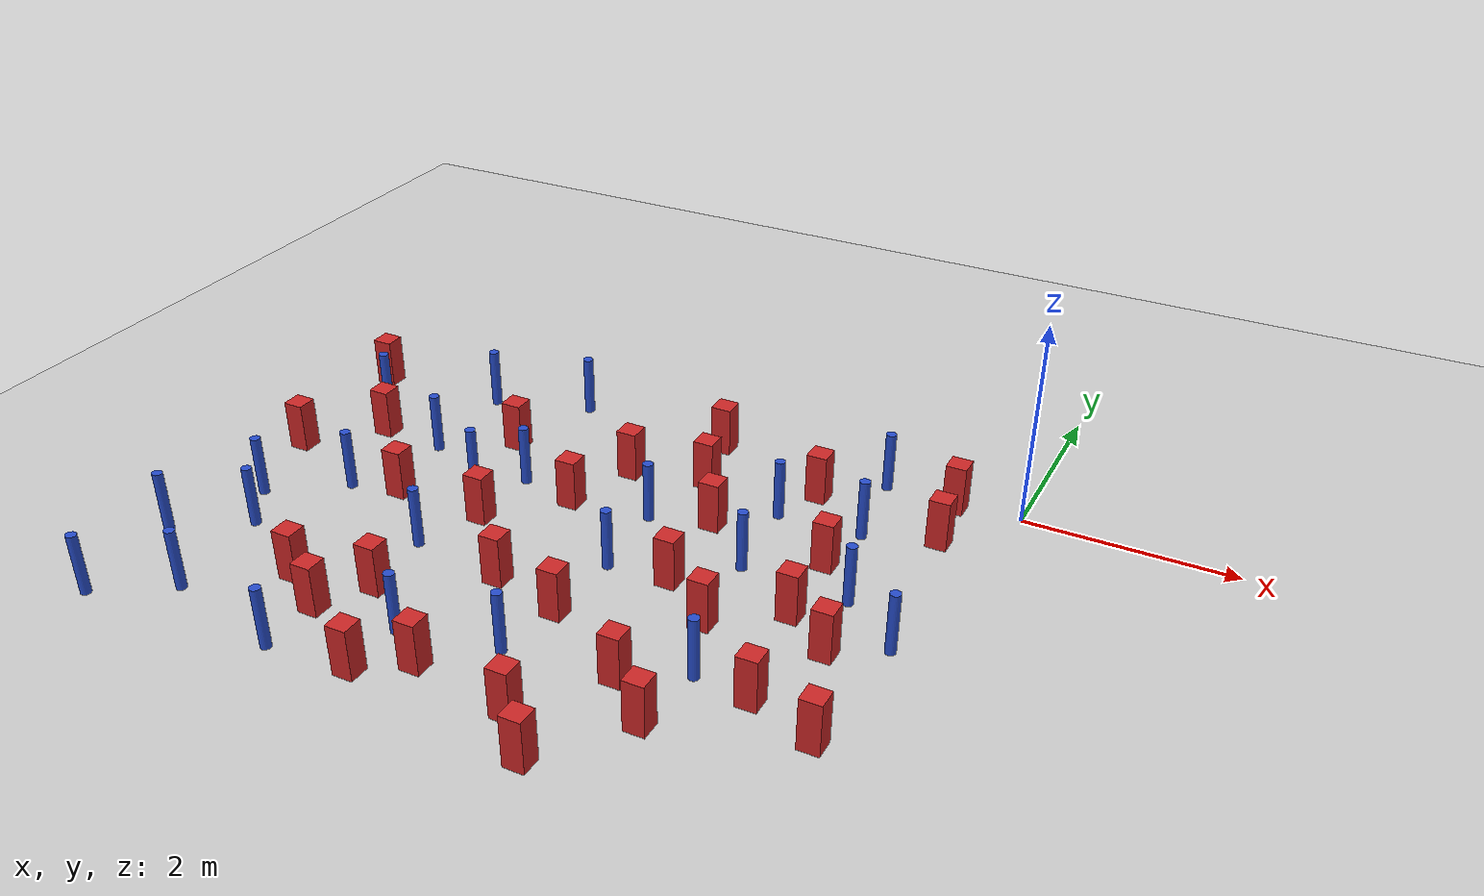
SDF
<sdf version="1.6">
 <world name="default">
  <model name="ground_plane">
   <static>1</static>
   <link name="link">
    <collision name="collision">
     <geometry><plane><normal>0 0 1</normal><size>100 100</size></plane></geometry>
     <surface><friction><ode><mu>100</mu><mu2>50</mu2></ode></friction></surface>
    </collision>
    <visual name="visual">
     <cast_shadows>0</cast_shadows>
     <geometry><plane><normal>0 0 1</normal><size>100 100</size></plane></geometry>
     <material>
      <ambient>1.0 1.0 1.0 1.0</ambient>
      <diffuse>0.8 0.8 0.8 1.0</diffuse>
      <specular>0.01 0.01 0.01 1.000000</specular>
     </material>
    </visual>
   </link>
  </model>
  <model name="pole_obstacle3">
   <static>true</static>
   <pose>-4.65431154523 -0.049632451906 2.88873142074e-08 -9.90536689836e-09 4.60219948989e-07 -1.20965994962e-07</pose>
   <link name="link">
    <pose>0 0 0.3 0 -0 0</pose>
    <inertial>
     <mass>1</mass>
     <inertia><ixx>0.145833</ixx><ixy>0</ixy><ixz>0</ixz><iyy>0.145833</iyy><iyz>0</iyz><izz>0.125</izz></inertia>
    </inertial>
    <collision name="collision">
     <geometry><cylinder><radius>0.05</radius><length>.6</length></cylinder></geometry>
    </collision>
    <visual name="visual">
     <geometry><cylinder><radius>0.05</radius><length>.6</length></cylinder></geometry>
     <material>
      <script><name>Gazebo/Blue</name><uri>file://media/materials/scripts/gazebo.material</uri></script>
     </material>
    </visual>
   </link>
  </model>
  <model name="square_post_obstacle7">
   <static>true</static>
   <pose>-3.04492859642 -0.102754242791 8.22691968438e-08 7.2212513382e-06 -7.54495500217e-07 2.29674213826e-05</pose>
   <link name="link">
    <pose>0 0 0.25 0 -0 0</pose>
    <inertial>
     <mass>100</mass>
     <inertia>
      <ixx>0.166667</ixx>
      <ixy>0</ixy>
      <ixz>0</ixz>
      <iyy>0.166667</iyy>
      <iyz>0</iyz>
      <izz>0.166667</izz>
     </inertia>
    </inertial>
    <collision name="collision"><geometry><box><size>.2 .2 .5</size></box></geometry></collision>
    <visual name="visual">
     <geometry><box><size>.2 .2 .5</size></box></geometry>
     <material>
      <script><name>Gazebo/Red</name><uri>file://media/materials/scripts/gazebo.material</uri></script>
     </material>
    </visual>
   </link>
  </model>
  <model name="square_post_obstacle9">
   <static>true</static>
   <pose>-2.44712936653 -2.39716291056 8.22691968438e-08 7.2212513382e-06 -7.54495500217e-07 2.29674213826e-05</pose>
   <link name="link">
    <pose>0 0 0.25 0 -0 0</pose>
    <inertial>
     <mass>100</mass>
     <inertia>
      <ixx>0.166667</ixx>
      <ixy>0</ixy>
      <ixz>0</ixz>
      <iyy>0.166667</iyy>
      <iyz>0</iyz>
      <izz>0.166667</izz>
     </inertia>
    </inertial>
    <collision name="collision"><geometry><box><size>.2 .2 .5</size></box></geometry></collision>
    <visual name="visual">
     <geometry><box><size>.2 .2 .5</size></box></geometry>
     <material>
      <script><name>Gazebo/Red</name><uri>file://media/materials/scripts/gazebo.material</uri></script>
     </material>
    </visual>
   </link>
  </model>
  <model name="square_post_obstacle13">
   <static>true</static>
   <pose>-1.74372210158 -4.18041785908 8.22691968438e-08 7.2212513382e-06 -7.54495500217e-07 2.29674213826e-05</pose>
   <link name="link">
    <pose>0 0 0.25 0 -0 0</pose>
    <inertial>
     <mass>100</mass>
     <inertia>
      <ixx>0.166667</ixx>
      <ixy>0</ixy>
      <ixz>0</ixz>
      <iyy>0.166667</iyy>
      <iyz>0</iyz>
      <izz>0.166667</izz>
     </inertia>
    </inertial>
    <collision name="collision"><geometry><box><size>.2 .2 .5</size></box></geometry></collision>
    <visual name="visual">
     <geometry><box><size>.2 .2 .5</size></box></geometry>
     <material>
      <script><name>Gazebo/Red</name><uri>file://media/materials/scripts/gazebo.material</uri></script>
     </material>
    </visual>
   </link>
  </model>
  <model name="square_post_obstacle15">
   <static>true</static>
   <pose>-1.29963969296 -2.36317838884 8.22691968438e-08 7.2212513382e-06 -7.54495500217e-07 2.29674213826e-05</pose>
   <link name="link">
    <pose>0 0 0.25 0 -0 0</pose>
    <inertial>
     <mass>100</mass>
     <inertia>
      <ixx>0.166667</ixx>
      <ixy>0</ixy>
      <ixz>0</ixz>
      <iyy>0.166667</iyy>
      <iyz>0</iyz>
      <izz>0.166667</izz>
     </inertia>
    </inertial>
    <collision name="collision"><geometry><box><size>.2 .2 .5</size></box></geometry></collision>
    <visual name="visual">
     <geometry><box><size>.2 .2 .5</size></box></geometry>
     <material>
      <script><name>Gazebo/Red</name><uri>file://media/materials/scripts/gazebo.material</uri></script>
     </material>
    </visual>
   </link>
  </model>
  <model name="pole_obstacle12">
   <static>true</static>
   <pose>-6.95035361133 -3.79772335389 2.88873142074e-08 -9.90536690245e-09 4.6021994898e-07 -1.20965994966e-07</pose>
   <link name="link">
    <pose>0 0 0.3 0 -0 0</pose>
    <inertial>
     <mass>1</mass>
     <inertia><ixx>0.145833</ixx><ixy>0</ixy><ixz>0</ixz><iyy>0.145833</iyy><iyz>0</iyz><izz>0.125</izz></inertia>
    </inertial>
    <collision name="collision">
     <geometry><cylinder><radius>0.05</radius><length>.6</length></cylinder></geometry>
    </collision>
    <visual name="visual">
     <geometry><cylinder><radius>0.05</radius><length>.6</length></cylinder></geometry>
     <material>
      <script><name>Gazebo/Blue</name><uri>file://media/materials/scripts/gazebo.material</uri></script>
     </material>
    </visual>
   </link>
  </model>
  <model name="pole_obstacle13">
   <static>true</static>
   <pose>-1.32171819452 -0.0439026230104 2.88873142074e-08 -9.90536689813e-09 4.6021994899e-07 -1.20965994959e-07</pose>
   <link name="link">
    <pose>0 0 0.3 0 -0 0</pose>
    <inertial>
     <mass>1</mass>
     <inertia><ixx>0.145833</ixx><ixy>0</ixy><ixz>0</ixz><iyy>0.145833</iyy><iyz>0</iyz><izz>0.125</izz></inertia>
    </inertial>
    <collision name="collision">
     <geometry><cylinder><radius>0.05</radius><length>.6</length></cylinder></geometry>
    </collision>
    <visual name="visual">
     <geometry><cylinder><radius>0.05</radius><length>.6</length></cylinder></geometry>
     <material>
      <script><name>Gazebo/Blue</name><uri>file://media/materials/scripts/gazebo.material</uri></script>
     </material>
    </visual>
   </link>
  </model>
  <model name="pole_obstacle16">
   <static>true</static>
   <pose>-1.22500886286 -0.947604422663 2.88873142074e-08 -9.90536689692e-09 4.60219948993e-07 -1.20965994958e-07</pose>
   <link name="link">
    <pose>0 0 0.3 0 -0 0</pose>
    <inertial>
     <mass>1</mass>
     <inertia><ixx>0.145833</ixx><ixy>0</ixy><ixz>0</ixz><iyy>0.145833</iyy><iyz>0</iyz><izz>0.125</izz></inertia>
    </inertial>
    <collision name="collision">
     <geometry><cylinder><radius>0.05</radius><length>.6</length></cylinder></geometry>
    </collision>
    <visual name="visual">
     <geometry><cylinder><radius>0.05</radius><length>.6</length></cylinder></geometry>
     <material>
      <script><name>Gazebo/Blue</name><uri>file://media/materials/scripts/gazebo.material</uri></script>
     </material>
    </visual>
   </link>
  </model>
  <model name="square_post_obstacle28">
   <static>true</static>
   <pose>-5.41641393784 -3.84407141766 8.22691968438e-08 7.2212513382e-06 -7.54495500217e-07 2.29674213826e-05</pose>
   <link name="link">
    <pose>0 0 0.25 0 -0 0</pose>
    <inertial>
     <mass>100</mass>
     <inertia>
      <ixx>0.166667</ixx>
      <ixy>0</ixy>
      <ixz>0</ixz>
      <iyy>0.166667</iyy>
      <iyz>0</iyz>
      <izz>0.166667</izz>
     </inertia>
    </inertial>
    <collision name="collision"><geometry><box><size>.2 .2 .5</size></box></geometry></collision>
    <visual name="visual">
     <geometry><box><size>.2 .2 .5</size></box></geometry>
     <material>
      <script><name>Gazebo/Red</name><uri>file://media/materials/scripts/gazebo.material</uri></script>
     </material>
    </visual>
   </link>
  </model>
  <model name="square_post_obstacle29">
   <static>true</static>
   <pose>-6.84025934175 -2.00615335642 8.22691968438e-08 7.2212513382e-06 -7.54495500217e-07 2.29674213826e-05</pose>
   <link name="link">
    <pose>0 0 0.25 0 -0 0</pose>
    <inertial>
     <mass>100</mass>
     <inertia>
      <ixx>0.166667</ixx>
      <ixy>0</ixy>
      <ixz>0</ixz>
      <iyy>0.166667</iyy>
      <iyz>0</iyz>
      <izz>0.166667</izz>
     </inertia>
    </inertial>
    <collision name="collision"><geometry><box><size>.2 .2 .5</size></box></geometry></collision>
    <visual name="visual">
     <geometry><box><size>.2 .2 .5</size></box></geometry>
     <material>
      <script><name>Gazebo/Red</name><uri>file://media/materials/scripts/gazebo.material</uri></script>
     </material>
    </visual>
   </link>
  </model>
  <model name="square_post_obstacle35">
   <static>true</static>
   <pose>-4.92721622297 -1.0049921567 8.22691968438e-08 7.2212513382e-06 -7.54495500217e-07 2.29674213826e-05</pose>
   <link name="link">
    <pose>0 0 0.25 0 -0 0</pose>
    <inertial>
     <mass>100</mass>
     <inertia>
      <ixx>0.166667</ixx>
      <ixy>0</ixy>
      <ixz>0</ixz>
      <iyy>0.166667</iyy>
      <iyz>0</iyz>
      <izz>0.166667</izz>
     </inertia>
    </inertial>
    <collision name="collision"><geometry><box><size>.2 .2 .5</size></box></geometry></collision>
    <visual name="visual">
     <geometry><box><size>.2 .2 .5</size></box></geometry>
     <material>
      <script><name>Gazebo/Red</name><uri>file://media/materials/scripts/gazebo.material</uri></script>
     </material>
    </visual>
   </link>
  </model>
  <model name="square_post_obstacle37">
   <static>true</static>
   <pose>-4.94528413653 -4.15136437428 8.22691968438e-08 7.22125133819e-06 -7.54495500217e-07 2.29674213826e-05</pose>
   <link name="link">
    <pose>0 0 0.25 0 -0 0</pose>
    <inertial>
     <mass>100</mass>
     <inertia>
      <ixx>0.166667</ixx>
      <ixy>0</ixy>
      <ixz>0</ixz>
      <iyy>0.166667</iyy>
      <iyz>0</iyz>
      <izz>0.166667</izz>
     </inertia>
    </inertial>
    <collision name="collision"><geometry><box><size>.2 .2 .5</size></box></geometry></collision>
    <visual name="visual">
     <geometry><box><size>.2 .2 .5</size></box></geometry>
     <material>
      <script><name>Gazebo/Red</name><uri>file://media/materials/scripts/gazebo.material</uri></script>
     </material>
    </visual>
   </link>
  </model>
  <model name="square_post_obstacle39">
   <static>true</static>
   <pose>-3.87931249522 -1.68780598803 8.22691968438e-08 7.2212513382e-06 -7.54495500217e-07 2.29674213826e-05</pose>
   <link name="link">
    <pose>0 0 0.25 0 -0 0</pose>
    <inertial>
     <mass>100</mass>
     <inertia>
      <ixx>0.166667</ixx>
      <ixy>0</ixy>
      <ixz>0</ixz>
      <iyy>0.166667</iyy>
      <iyz>0</iyz>
      <izz>0.166667</izz>
     </inertia>
    </inertial>
    <collision name="collision"><geometry><box><size>.2 .2 .5</size></box></geometry></collision>
    <visual name="visual">
     <geometry><box><size>.2 .2 .5</size></box></geometry>
     <material>
      <script><name>Gazebo/Red</name><uri>file://media/materials/scripts/gazebo.material</uri></script>
     </material>
    </visual>
   </link>
  </model>
  <model name="pole_obstacle40">
   <static>true</static>
   <pose>-6.59557174269 -2.90107456969 2.88873142074e-08 -9.90536690245e-09 4.6021994898e-07 -1.20965994966e-07</pose>
   <link name="link">
    <pose>0 0 0.3 0 -0 0</pose>
    <inertial>
     <mass>1</mass>
     <inertia><ixx>0.145833</ixx><ixy>0</ixy><ixz>0</ixz><iyy>0.145833</iyy><iyz>0</iyz><izz>0.125</izz></inertia>
    </inertial>
    <collision name="collision">
     <geometry><cylinder><radius>0.05</radius><length>.6</length></cylinder></geometry>
    </collision>
    <visual name="visual">
     <geometry><cylinder><radius>0.05</radius><length>.6</length></cylinder></geometry>
     <material>
      <script><name>Gazebo/Blue</name><uri>file://media/materials/scripts/gazebo.material</uri></script>
     </material>
    </visual>
   </link>
  </model>
  <model name="square_post_obstacle51">
   <static>true</static>
   <pose>-3.79747003613 -3.06418944202 8.22691968438e-08 7.2212513382e-06 -7.54495500217e-07 2.29674213826e-05</pose>
   <link name="link">
    <pose>0 0 0.25 0 -0 0</pose>
    <inertial>
     <mass>100</mass>
     <inertia>
      <ixx>0.166667</ixx>
      <ixy>0</ixy>
      <ixz>0</ixz>
      <iyy>0.166667</iyy>
      <iyz>0</iyz>
      <izz>0.166667</izz>
     </inertia>
    </inertial>
    <collision name="collision"><geometry><box><size>.2 .2 .5</size></box></geometry></collision>
    <visual name="visual">
     <geometry><box><size>.2 .2 .5</size></box></geometry>
     <material>
      <script><name>Gazebo/Red</name><uri>file://media/materials/scripts/gazebo.material</uri></script>
     </material>
    </visual>
   </link>
  </model>
  <model name="pole_obstacle53">
   <static>true</static>
   <pose>-6.17504918589 -4.4463933655 2.88873142074e-08 -9.90536690842e-09 4.60219948965e-07 -1.20965994976e-07</pose>
   <link name="link">
    <pose>0 0 0.3 0 -0 0</pose>
    <inertial>
     <mass>1</mass>
     <inertia><ixx>0.145833</ixx><ixy>0</ixy><ixz>0</ixz><iyy>0.145833</iyy><iyz>0</iyz><izz>0.125</izz></inertia>
    </inertial>
    <collision name="collision">
     <geometry><cylinder><radius>0.05</radius><length>.6</length></cylinder></geometry>
    </collision>
    <visual name="visual">
     <geometry><cylinder><radius>0.05</radius><length>.6</length></cylinder></geometry>
     <material>
      <script><name>Gazebo/Blue</name><uri>file://media/materials/scripts/gazebo.material</uri></script>
     </material>
    </visual>
   </link>
  </model>
  <model name="square_post_obstacle68">
   <static>true</static>
   <pose>-6.2601783435 -1.39290389373 8.22691968438e-08 7.2212513382e-06 -7.54495500217e-07 2.29674213826e-05</pose>
   <link name="link">
    <pose>0 0 0.25 0 -0 0</pose>
    <inertial>
     <mass>100</mass>
     <inertia>
      <ixx>0.166667</ixx>
      <ixy>0</ixy>
      <ixz>0</ixz>
      <iyy>0.166667</iyy>
      <iyz>0</iyz>
      <izz>0.166667</izz>
     </inertia>
    </inertial>
    <collision name="collision"><geometry><box><size>.2 .2 .5</size></box></geometry></collision>
    <visual name="visual">
     <geometry><box><size>.2 .2 .5</size></box></geometry>
     <material>
      <script><name>Gazebo/Red</name><uri>file://media/materials/scripts/gazebo.material</uri></script>
     </material>
    </visual>
   </link>
  </model>
  <model name="pole_obstacle75">
   <static>true</static>
   <pose>-5.91961175103 -2.41519830627 2.88873142074e-08 -9.90536690245e-09 4.6021994898e-07 -1.20965994966e-07</pose>
   <link name="link">
    <pose>0 0 0.3 0 -0 0</pose>
    <inertial>
     <mass>1</mass>
     <inertia><ixx>0.145833</ixx><ixy>0</ixy><ixz>0</ixz><iyy>0.145833</iyy><iyz>0</iyz><izz>0.125</izz></inertia>
    </inertial>
    <collision name="collision">
     <geometry><cylinder><radius>0.05</radius><length>.6</length></cylinder></geometry>
    </collision>
    <visual name="visual">
     <geometry><cylinder><radius>0.05</radius><length>.6</length></cylinder></geometry>
     <material>
      <script><name>Gazebo/Blue</name><uri>file://media/materials/scripts/gazebo.material</uri></script>
     </material>
    </visual>
   </link>
  </model>
  <model name="pole_obstacle79">
   <static>true</static>
   <pose>-3.04252465018 -2.44269173015 2.88873142074e-08 -9.90536689597e-09 4.60219948995e-07 -1.20965994957e-07</pose>
   <link name="link">
    <pose>0 0 0.3 0 -0 0</pose>
    <inertial>
     <mass>1</mass>
     <inertia><ixx>0.145833</ixx><ixy>0</ixy><ixz>0</ixz><iyy>0.145833</iyy><iyz>0</iyz><izz>0.125</izz></inertia>
    </inertial>
    <collision name="collision">
     <geometry><cylinder><radius>0.05</radius><length>.6</length></cylinder></geometry>
    </collision>
    <visual name="visual">
     <geometry><cylinder><radius>0.05</radius><length>.6</length></cylinder></geometry>
     <material>
      <script><name>Gazebo/Blue</name><uri>file://media/materials/scripts/gazebo.material</uri></script>
     </material>
    </visual>
   </link>
  </model>
  <model name="square_post_obstacle80">
   <static>true</static>
   <pose>-1.1157509572 -3.52607241706 8.22691968438e-08 7.2212513382e-06 -7.54495500217e-07 2.29674213826e-05</pose>
   <link name="link">
    <pose>0 0 0.25 0 -0 0</pose>
    <inertial>
     <mass>100</mass>
     <inertia>
      <ixx>0.166667</ixx>
      <ixy>0</ixy>
      <ixz>0</ixz>
      <iyy>0.166667</iyy>
      <iyz>0</iyz>
      <izz>0.166667</izz>
     </inertia>
    </inertial>
    <collision name="collision"><geometry><box><size>.2 .2 .5</size></box></geometry></collision>
    <visual name="visual">
     <geometry><box><size>.2 .2 .5</size></box></geometry>
     <material>
      <script><name>Gazebo/Red</name><uri>file://media/materials/scripts/gazebo.material</uri></script>
     </material>
    </visual>
   </link>
  </model>
  <model name="pole_obstacle93">
   <static>true</static>
   <pose>-6.86154447628 -4.88555178554 2.88873142074e-08 -9.90536690842e-09 4.60219948965e-07 -1.20965994976e-07</pose>
   <link name="link">
    <pose>0 0 0.3 0 -0 0</pose>
    <inertial>
     <mass>1</mass>
     <inertia><ixx>0.145833</ixx><ixy>0</ixy><ixz>0</ixz><iyy>0.145833</iyy><iyz>0</iyz><izz>0.125</izz></inertia>
    </inertial>
    <collision name="collision">
     <geometry><cylinder><radius>0.05</radius><length>.6</length></cylinder></geometry>
    </collision>
    <visual name="visual">
     <geometry><cylinder><radius>0.05</radius><length>.6</length></cylinder></geometry>
     <material>
      <script><name>Gazebo/Blue</name><uri>file://media/materials/scripts/gazebo.material</uri></script>
     </material>
    </visual>
   </link>
  </model>
  <model name="square_post_obstacle90">
   <static>true</static>
   <pose>-1.84052322936 -0.512357367253 8.22691968438e-08 7.22125133819e-06 -7.54495500217e-07 2.29674213826e-05</pose>
   <link name="link">
    <pose>0 0 0.25 0 -0 0</pose>
    <inertial>
     <mass>100</mass>
     <inertia>
      <ixx>0.166667</ixx>
      <ixy>0</ixy>
      <ixz>0</ixz>
      <iyy>0.166667</iyy>
      <iyz>0</iyz>
      <izz>0.166667</izz>
     </inertia>
    </inertial>
    <collision name="collision"><geometry><box><size>.2 .2 .5</size></box></geometry></collision>
    <visual name="visual">
     <geometry><box><size>.2 .2 .5</size></box></geometry>
     <material>
      <script><name>Gazebo/Red</name><uri>file://media/materials/scripts/gazebo.material</uri></script>
     </material>
    </visual>
   </link>
  </model>
  <model name="pole_obstacle108">
   <static>true</static>
   <pose>-4.89604325577 -1.8274690776 2.88873142074e-08 -9.90536689445e-09 4.60219948999e-07 -1.20965994956e-07</pose>
   <link name="link">
    <pose>0 0 0.3 0 -0 0</pose>
    <inertial>
     <mass>1</mass>
     <inertia><ixx>0.145833</ixx><ixy>0</ixy><ixz>0</ixz><iyy>0.145833</iyy><iyz>0</iyz><izz>0.125</izz></inertia>
    </inertial>
    <collision name="collision">
     <geometry><cylinder><radius>0.05</radius><length>.6</length></cylinder></geometry>
    </collision>
    <visual name="visual">
     <geometry><cylinder><radius>0.05</radius><length>.6</length></cylinder></geometry>
     <material>
      <script><name>Gazebo/Blue</name><uri>file://media/materials/scripts/gazebo.material</uri></script>
     </material>
    </visual>
   </link>
  </model>
  <model name="pole_obstacle110">
   <static>true</static>
   <pose>-6.60088356629 -0.937540209698 2.88873142074e-08 -9.90536689837e-09 4.60219948989e-07 -1.2096599496e-07</pose>
   <link name="link">
    <pose>0 0 0.3 0 -0 0</pose>
    <inertial>
     <mass>1</mass>
     <inertia><ixx>0.145833</ixx><ixy>0</ixy><ixz>0</ixz><iyy>0.145833</iyy><iyz>0</iyz><izz>0.125</izz></inertia>
    </inertial>
    <collision name="collision">
     <geometry><cylinder><radius>0.05</radius><length>.6</length></cylinder></geometry>
    </collision>
    <visual name="visual">
     <geometry><cylinder><radius>0.05</radius><length>.6</length></cylinder></geometry>
     <material>
      <script><name>Gazebo/Blue</name><uri>file://media/materials/scripts/gazebo.material</uri></script>
     </material>
    </visual>
   </link>
  </model>
  <model name="pole_obstacle111">
   <static>true</static>
   <pose>-4.74651218512 -2.93397210574 2.88873142074e-08 -9.90536690245e-09 4.6021994898e-07 -1.20965994966e-07</pose>
   <link name="link">
    <pose>0 0 0.3 0 -0 0</pose>
    <inertial>
     <mass>1</mass>
     <inertia><ixx>0.145833</ixx><ixy>0</ixy><ixz>0</ixz><iyy>0.145833</iyy><iyz>0</iyz><izz>0.125</izz></inertia>
    </inertial>
    <collision name="collision">
     <geometry><cylinder><radius>0.05</radius><length>.6</length></cylinder></geometry>
    </collision>
    <visual name="visual">
     <geometry><cylinder><radius>0.05</radius><length>.6</length></cylinder></geometry>
     <material>
      <script><name>Gazebo/Blue</name><uri>file://media/materials/scripts/gazebo.material</uri></script>
     </material>
    </visual>
   </link>
  </model>
  <model name="pole_obstacle113">
   <static>true</static>
   <pose>-5.61348480755 -0.3627885953 2.88873142074e-08 -9.90536689981e-09 4.60219948986e-07 -1.20965994962e-07</pose>
   <link name="link">
    <pose>0 0 0.3 0 -0 0</pose>
    <inertial>
     <mass>1</mass>
     <inertia><ixx>0.145833</ixx><ixy>0</ixy><ixz>0</ixz><iyy>0.145833</iyy><iyz>0</iyz><izz>0.125</izz></inertia>
    </inertial>
    <collision name="collision">
     <geometry><cylinder><radius>0.05</radius><length>.6</length></cylinder></geometry>
    </collision>
    <visual name="visual">
     <geometry><cylinder><radius>0.05</radius><length>.6</length></cylinder></geometry>
     <material>
      <script><name>Gazebo/Blue</name><uri>file://media/materials/scripts/gazebo.material</uri></script>
     </material>
    </visual>
   </link>
  </model>
  <model name="pole_obstacle115">
   <static>true</static>
   <pose>-4.96153577113 -4.74527029162 2.88873142074e-08 -9.90536690842e-09 4.60219948965e-07 -1.20965994976e-07</pose>
   <link name="link">
    <pose>0 0 0.3 0 -0 0</pose>
    <inertial>
     <mass>1</mass>
     <inertia><ixx>0.145833</ixx><ixy>0</ixy><ixz>0</ixz><iyy>0.145833</iyy><iyz>0</iyz><izz>0.125</izz></inertia>
    </inertial>
    <collision name="collision">
     <geometry><cylinder><radius>0.05</radius><length>.6</length></cylinder></geometry>
    </collision>
    <visual name="visual">
     <geometry><cylinder><radius>0.05</radius><length>.6</length></cylinder></geometry>
     <material>
      <script><name>Gazebo/Blue</name><uri>file://media/materials/scripts/gazebo.material</uri></script>
     </material>
    </visual>
   </link>
  </model>
  <model name="pole_obstacle118">
   <static>true</static>
   <pose>-6.29734735513 -3.35635587979 2.88873142074e-08 -9.90536690245e-09 4.6021994898e-07 -1.20965994966e-07</pose>
   <link name="link">
    <pose>0 0 0.3 0 -0 0</pose>
    <inertial>
     <mass>1</mass>
     <inertia><ixx>0.145833</ixx><ixy>0</ixy><ixz>0</ixz><iyy>0.145833</iyy><iyz>0</iyz><izz>0.125</izz></inertia>
    </inertial>
    <collision name="collision">
     <geometry><cylinder><radius>0.05</radius><length>.6</length></cylinder></geometry>
    </collision>
    <visual name="visual">
     <geometry><cylinder><radius>0.05</radius><length>.6</length></cylinder></geometry>
     <material>
      <script><name>Gazebo/Blue</name><uri>file://media/materials/scripts/gazebo.material</uri></script>
     </material>
    </visual>
   </link>
  </model>
  <model name="square_post_obstacle114">
   <static>true</static>
   <pose>-3.08886361998 -3.25030162991 8.22691968438e-08 7.2212513382e-06 -7.54495500217e-07 2.29674213826e-05</pose>
   <link name="link">
    <pose>0 0 0.25 0 -0 0</pose>
    <inertial>
     <mass>100</mass>
     <inertia>
      <ixx>0.166667</ixx>
      <ixy>0</ixy>
      <ixz>0</ixz>
      <iyy>0.166667</iyy>
      <iyz>0</iyz>
      <izz>0.166667</izz>
     </inertia>
    </inertial>
    <collision name="collision"><geometry><box><size>.2 .2 .5</size></box></geometry></collision>
    <visual name="visual">
     <geometry><box><size>.2 .2 .5</size></box></geometry>
     <material>
      <script><name>Gazebo/Red</name><uri>file://media/materials/scripts/gazebo.material</uri></script>
     </material>
    </visual>
   </link>
  </model>
  <model name="pole_obstacle139">
   <static>true</static>
   <pose>-4.13523912592 -4.08032751651 2.88873142074e-08 -9.90536690842e-09 4.60219948965e-07 -1.20965994976e-07</pose>
   <link name="link">
    <pose>0 0 0.3 0 -0 0</pose>
    <inertial>
     <mass>1</mass>
     <inertia><ixx>0.145833</ixx><ixy>0</ixy><ixz>0</ixz><iyy>0.145833</iyy><iyz>0</iyz><izz>0.125</izz></inertia>
    </inertial>
    <collision name="collision">
     <geometry><cylinder><radius>0.05</radius><length>.6</length></cylinder></geometry>
    </collision>
    <visual name="visual">
     <geometry><cylinder><radius>0.05</radius><length>.6</length></cylinder></geometry>
     <material>
      <script><name>Gazebo/Blue</name><uri>file://media/materials/scripts/gazebo.material</uri></script>
     </material>
    </visual>
   </link>
  </model>
  <model name="square_post_obstacle128">
   <static>true</static>
   <pose>-5.42567264613 -2.29209661981 8.22691968438e-08 7.2212513382e-06 -7.54495500217e-07 2.29674213826e-05</pose>
   <link name="link">
    <pose>0 0 0.25 0 -0 0</pose>
    <inertial>
     <mass>100</mass>
     <inertia>
      <ixx>0.166667</ixx>
      <ixy>0</ixy>
      <ixz>0</ixz>
      <iyy>0.166667</iyy>
      <iyz>0</iyz>
      <izz>0.166667</izz>
     </inertia>
    </inertial>
    <collision name="collision"><geometry><box><size>.2 .2 .5</size></box></geometry></collision>
    <visual name="visual">
     <geometry><box><size>.2 .2 .5</size></box></geometry>
     <material>
      <script><name>Gazebo/Red</name><uri>file://media/materials/scripts/gazebo.material</uri></script>
     </material>
    </visual>
   </link>
  </model>
  <model name="square_post_obstacle129">
   <static>true</static>
   <pose>-4.14093662946 -4.68471147665 8.22691968438e-08 7.22125133819e-06 -7.54495500217e-07 2.29674213826e-05</pose>
   <link name="link">
    <pose>0 0 0.25 0 -0 0</pose>
    <inertial>
     <mass>100</mass>
     <inertia>
      <ixx>0.166667</ixx>
      <ixy>0</ixy>
      <ixz>0</ixz>
      <iyy>0.166667</iyy>
      <iyz>0</iyz>
      <izz>0.166667</izz>
     </inertia>
    </inertial>
    <collision name="collision"><geometry><box><size>.2 .2 .5</size></box></geometry></collision>
    <visual name="visual">
     <geometry><box><size>.2 .2 .5</size></box></geometry>
     <material>
      <script><name>Gazebo/Red</name><uri>file://media/materials/scripts/gazebo.material</uri></script>
     </material>
    </visual>
   </link>
  </model>
  <model name="square_post_obstacle130">
   <static>true</static>
   <pose>-0.622265682794 -0.0923728710227 8.22691968438e-08 7.2212513382e-06 -7.54495500217e-07 2.29674213826e-05</pose>
   <link name="link">
    <pose>0 0 0.25 0 -0 0</pose>
    <inertial>
     <mass>100</mass>
     <inertia>
      <ixx>0.166667</ixx>
      <ixy>0</ixy>
      <ixz>0</ixz>
      <iyy>0.166667</iyy>
      <iyz>0</iyz>
      <izz>0.166667</izz>
     </inertia>
    </inertial>
    <collision name="collision"><geometry><box><size>.2 .2 .5</size></box></geometry></collision>
    <visual name="visual">
     <geometry><box><size>.2 .2 .5</size></box></geometry>
     <material>
      <script><name>Gazebo/Red</name><uri>file://media/materials/scripts/gazebo.material</uri></script>
     </material>
    </visual>
   </link>
  </model>
  <model name="square_post_obstacle134">
   <static>true</static>
   <pose>-2.73263971602 -4.53543864606 8.22691968438e-08 7.22125133819e-06 -7.54495500217e-07 2.29674213826e-05</pose>
   <link name="link">
    <pose>0 0 0.25 0 -0 0</pose>
    <inertial>
     <mass>100</mass>
     <inertia>
      <ixx>0.166667</ixx>
      <ixy>0</ixy>
      <ixz>0</ixz>
      <iyy>0.166667</iyy>
      <iyz>0</iyz>
      <izz>0.166667</izz>
     </inertia>
    </inertial>
    <collision name="collision"><geometry><box><size>.2 .2 .5</size></box></geometry></collision>
    <visual name="visual">
     <geometry><box><size>.2 .2 .5</size></box></geometry>
     <material>
      <script><name>Gazebo/Red</name><uri>file://media/materials/scripts/gazebo.material</uri></script>
     </material>
    </visual>
   </link>
  </model>
  <model name="pole_obstacle151">
   <static>true</static>
   <pose>-2.04354326472 -0.98591258766 2.88873142074e-08 -9.90536689725e-09 4.60219948992e-07 -1.2096599496e-07</pose>
   <link name="link">
    <pose>0 0 0.3 0 -0 0</pose>
    <inertial>
     <mass>1</mass>
     <inertia><ixx>0.145833</ixx><ixy>0</ixy><ixz>0</ixz><iyy>0.145833</iyy><iyz>0</iyz><izz>0.125</izz></inertia>
    </inertial>
    <collision name="collision">
     <geometry><cylinder><radius>0.05</radius><length>.6</length></cylinder></geometry>
    </collision>
    <visual name="visual">
     <geometry><cylinder><radius>0.05</radius><length>.6</length></cylinder></geometry>
     <material>
      <script><name>Gazebo/Blue</name><uri>file://media/materials/scripts/gazebo.material</uri></script>
     </material>
    </visual>
   </link>
  </model>
  <model name="pole_obstacle153">
   <static>true</static>
   <pose>-3.20919204239 -3.8922056406 2.88873142074e-08 -9.90536690232e-09 4.6021994898e-07 -1.20965994968e-07</pose>
   <link name="link">
    <pose>0 0 0.3 0 -0 0</pose>
    <inertial>
     <mass>1</mass>
     <inertia><ixx>0.145833</ixx><ixy>0</ixy><ixz>0</ixz><iyy>0.145833</iyy><iyz>0</iyz><izz>0.125</izz></inertia>
    </inertial>
    <collision name="collision">
     <geometry><cylinder><radius>0.05</radius><length>.6</length></cylinder></geometry>
    </collision>
    <visual name="visual">
     <geometry><cylinder><radius>0.05</radius><length>.6</length></cylinder></geometry>
     <material>
      <script><name>Gazebo/Blue</name><uri>file://media/materials/scripts/gazebo.material</uri></script>
     </material>
    </visual>
   </link>
  </model>
  <model name="pole_obstacle154">
   <static>true</static>
   <pose>-4.46744352312 -1.56582904462 2.88873142074e-08 -9.90536689445e-09 4.60219948999e-07 -1.20965994956e-07</pose>
   <link name="link">
    <pose>0 0 0.3 0 -0 0</pose>
    <inertial>
     <mass>1</mass>
     <inertia><ixx>0.145833</ixx><ixy>0</ixy><ixz>0</ixz><iyy>0.145833</iyy><iyz>0</iyz><izz>0.125</izz></inertia>
    </inertial>
    <collision name="collision">
     <geometry><cylinder><radius>0.05</radius><length>.6</length></cylinder></geometry>
    </collision>
    <visual name="visual">
     <geometry><cylinder><radius>0.05</radius><length>.6</length></cylinder></geometry>
     <material>
      <script><name>Gazebo/Blue</name><uri>file://media/materials/scripts/gazebo.material</uri></script>
     </material>
    </visual>
   </link>
  </model>
  <model name="square_post_obstacle147">
   <static>true</static>
   <pose>-0.482668859761 -3.75409535751 8.22691968438e-08 7.2212513382e-06 -7.54495500217e-07 2.29674213826e-05</pose>
   <link name="link">
    <pose>0 0 0.25 0 -0 0</pose>
    <inertial>
     <mass>100</mass>
     <inertia>
      <ixx>0.166667</ixx>
      <ixy>0</ixy>
      <ixz>0</ixz>
      <iyy>0.166667</iyy>
      <iyz>0</iyz>
      <izz>0.166667</izz>
     </inertia>
    </inertial>
    <collision name="collision"><geometry><box><size>.2 .2 .5</size></box></geometry></collision>
    <visual name="visual">
     <geometry><box><size>.2 .2 .5</size></box></geometry>
     <material>
      <script><name>Gazebo/Red</name><uri>file://media/materials/scripts/gazebo.material</uri></script>
     </material>
    </visual>
   </link>
  </model>
  <model name="pole_obstacle157">
   <static>true</static>
   <pose>-5.59664293899 -1.43913265441 2.88873142074e-08 -9.90536689445e-09 4.60219948999e-07 -1.20965994956e-07</pose>
   <link name="link">
    <pose>0 0 0.3 0 -0 0</pose>
    <inertial>
     <mass>1</mass>
     <inertia><ixx>0.145833</ixx><ixy>0</ixy><ixz>0</ixz><iyy>0.145833</iyy><iyz>0</iyz><izz>0.125</izz></inertia>
    </inertial>
    <collision name="collision">
     <geometry><cylinder><radius>0.05</radius><length>.6</length></cylinder></geometry>
    </collision>
    <visual name="visual">
     <geometry><cylinder><radius>0.05</radius><length>.6</length></cylinder></geometry>
     <material>
      <script><name>Gazebo/Blue</name><uri>file://media/materials/scripts/gazebo.material</uri></script>
     </material>
    </visual>
   </link>
  </model>
  <model name="pole_obstacle161">
   <static>true</static>
   <pose>-0.372887094055 -2.418606544 2.88873142074e-08 -9.90536689663e-09 4.60219948993e-07 -1.20965994959e-07</pose>
   <link name="link">
    <pose>0 0 0.3 0 -0 0</pose>
    <inertial>
     <mass>1</mass>
     <inertia><ixx>0.145833</ixx><ixy>0</ixy><ixz>0</ixz><iyy>0.145833</iyy><iyz>0</iyz><izz>0.125</izz></inertia>
    </inertial>
    <collision name="collision">
     <geometry><cylinder><radius>0.05</radius><length>.6</length></cylinder></geometry>
    </collision>
    <visual name="visual">
     <geometry><cylinder><radius>0.05</radius><length>.6</length></cylinder></geometry>
     <material>
      <script><name>Gazebo/Blue</name><uri>file://media/materials/scripts/gazebo.material</uri></script>
     </material>
    </visual>
   </link>
  </model>
  <model name="square_post_obstacle157">
   <static>true</static>
   <pose>-2.33520182696 -4.94512895332 8.22691968438e-08 7.22125133819e-06 -7.54495500217e-07 2.29674213826e-05</pose>
   <link name="link">
    <pose>0 0 0.25 0 -0 0</pose>
    <inertial>
     <mass>100</mass>
     <inertia>
      <ixx>0.166667</ixx>
      <ixy>0</ixy>
      <ixz>0</ixz>
      <iyy>0.166667</iyy>
      <iyz>0</iyz>
      <izz>0.166667</izz>
     </inertia>
    </inertial>
    <collision name="collision"><geometry><box><size>.2 .2 .5</size></box></geometry></collision>
    <visual name="visual">
     <geometry><box><size>.2 .2 .5</size></box></geometry>
     <material>
      <script><name>Gazebo/Red</name><uri>file://media/materials/scripts/gazebo.material</uri></script>
     </material>
    </visual>
   </link>
  </model>
  <model name="pole_obstacle166">
   <static>true</static>
   <pose>-1.97688872264 -1.91158103233 2.88873142074e-08 -9.90536690043e-09 4.60219948984e-07 -1.20965994963e-07</pose>
   <link name="link">
    <pose>0 0 0.3 0 -0 0</pose>
    <inertial>
     <mass>1</mass>
     <inertia><ixx>0.145833</ixx><ixy>0</ixy><ixz>0</ixz><iyy>0.145833</iyy><iyz>0</iyz><izz>0.125</izz></inertia>
    </inertial>
    <collision name="collision">
     <geometry><cylinder><radius>0.05</radius><length>.6</length></cylinder></geometry>
    </collision>
    <visual name="visual">
     <geometry><cylinder><radius>0.05</radius><length>.6</length></cylinder></geometry>
     <material>
      <script><name>Gazebo/Blue</name><uri>file://media/materials/scripts/gazebo.material</uri></script>
     </material>
    </visual>
   </link>
  </model>
  <model name="square_post_obstacle164">
   <static>true</static>
   <pose>-1.91224577191 -2.80052684152 8.22691968438e-08 7.2212513382e-06 -7.54495500217e-07 2.29674213826e-05</pose>
   <link name="link">
    <pose>0 0 0.25 0 -0 0</pose>
    <inertial>
     <mass>100</mass>
     <inertia>
      <ixx>0.166667</ixx>
      <ixy>0</ixy>
      <ixz>0</ixz>
      <iyy>0.166667</iyy>
      <iyz>0</iyz>
      <izz>0.166667</izz>
     </inertia>
    </inertial>
    <collision name="collision"><geometry><box><size>.2 .2 .5</size></box></geometry></collision>
    <visual name="visual">
     <geometry><box><size>.2 .2 .5</size></box></geometry>
     <material>
      <script><name>Gazebo/Red</name><uri>file://media/materials/scripts/gazebo.material</uri></script>
     </material>
    </visual>
   </link>
  </model>
  <model name="square_post_obstacle167">
   <static>true</static>
   <pose>-2.51557895732 -1.41411376296 8.22691968438e-08 7.2212513382e-06 -7.54495500217e-07 2.29674213826e-05</pose>
   <link name="link">
    <pose>0 0 0.25 0 -0 0</pose>
    <inertial>
     <mass>100</mass>
     <inertia>
      <ixx>0.166667</ixx>
      <ixy>0</ixy>
      <ixz>0</ixz>
      <iyy>0.166667</iyy>
      <iyz>0</iyz>
      <izz>0.166667</izz>
     </inertia>
    </inertial>
    <collision name="collision"><geometry><box><size>.2 .2 .5</size></box></geometry></collision>
    <visual name="visual">
     <geometry><box><size>.2 .2 .5</size></box></geometry>
     <material>
      <script><name>Gazebo/Red</name><uri>file://media/materials/scripts/gazebo.material</uri></script>
     </material>
    </visual>
   </link>
  </model>
  <model name="square_post_obstacle171">
   <static>true</static>
   <pose>-2.19618136256 -3.77526053357 8.22691968438e-08 7.2212513382e-06 -7.54495500217e-07 2.29674213826e-05</pose>
   <link name="link">
    <pose>0 0 0.25 0 -0 0</pose>
    <inertial>
     <mass>100</mass>
     <inertia>
      <ixx>0.166667</ixx>
      <ixy>0</ixy>
      <ixz>0</ixz>
      <iyy>0.166667</iyy>
      <iyz>0</iyz>
      <izz>0.166667</izz>
     </inertia>
    </inertial>
    <collision name="collision"><geometry><box><size>.2 .2 .5</size></box></geometry></collision>
    <visual name="visual">
     <geometry><box><size>.2 .2 .5</size></box></geometry>
     <material>
      <script><name>Gazebo/Red</name><uri>file://media/materials/scripts/gazebo.material</uri></script>
     </material>
    </visual>
   </link>
  </model>
  <model name="pole_obstacle186">
   <static>true</static>
   <pose>-3.09871829772 -1.58486433108 2.88873142074e-08 -9.90536689395e-09 4.60219949e-07 -1.20965994953e-07</pose>
   <link name="link">
    <pose>0 0 0.3 0 -0 0</pose>
    <inertial>
     <mass>1</mass>
     <inertia><ixx>0.145833</ixx><ixy>0</ixy><ixz>0</ixz><iyy>0.145833</iyy><iyz>0</iyz><izz>0.125</izz></inertia>
    </inertial>
    <collision name="collision">
     <geometry><cylinder><radius>0.05</radius><length>.6</length></cylinder></geometry>
    </collision>
    <visual name="visual">
     <geometry><cylinder><radius>0.05</radius><length>.6</length></cylinder></geometry>
     <material>
      <script><name>Gazebo/Blue</name><uri>file://media/materials/scripts/gazebo.material</uri></script>
     </material>
    </visual>
   </link>
  </model>
  <model name="square_post_obstacle187">
   <static>true</static>
   <pose>-3.63580979344 -0.958831403464 8.22691968438e-08 7.2212513382e-06 -7.54495500217e-07 2.29674213826e-05</pose>
   <link name="link">
    <pose>0 0 0.25 0 -0 0</pose>
    <inertial>
     <mass>100</mass>
     <inertia>
      <ixx>0.166667</ixx>
      <ixy>0</ixy>
      <ixz>0</ixz>
      <iyy>0.166667</iyy>
      <iyz>0</iyz>
      <izz>0.166667</izz>
     </inertia>
    </inertial>
    <collision name="collision"><geometry><box><size>.2 .2 .5</size></box></geometry></collision>
    <visual name="visual">
     <geometry><box><size>.2 .2 .5</size></box></geometry>
     <material>
      <script><name>Gazebo/Red</name><uri>file://media/materials/scripts/gazebo.material</uri></script>
     </material>
    </visual>
   </link>
  </model>
  <model name="square_post_obstacle189">
   <static>true</static>
   <pose>-1.33712093552 -1.53388011498 8.22691968438e-08 7.2212513382e-06 -7.54495500217e-07 2.29674213826e-05</pose>
   <link name="link">
    <pose>0 0 0.25 0 -0 0</pose>
    <inertial>
     <mass>100</mass>
     <inertia>
      <ixx>0.166667</ixx>
      <ixy>0</ixy>
      <ixz>0</ixz>
      <iyy>0.166667</iyy>
      <iyz>0</iyz>
      <izz>0.166667</izz>
     </inertia>
    </inertial>
    <collision name="collision"><geometry><box><size>.2 .2 .5</size></box></geometry></collision>
    <visual name="visual">
     <geometry><box><size>.2 .2 .5</size></box></geometry>
     <material>
      <script><name>Gazebo/Red</name><uri>file://media/materials/scripts/gazebo.material</uri></script>
     </material>
    </visual>
   </link>
  </model>
  <model name="square_post_obstacle195">
   <static>true</static>
   <pose>-0.558494397367 -0.725226368323 8.22691968438e-08 7.2212513382e-06 -7.54495500217e-07 2.29674213826e-05</pose>
   <link name="link">
    <pose>0 0 0.25 0 -0 0</pose>
    <inertial>
     <mass>100</mass>
     <inertia>
      <ixx>0.166667</ixx>
      <ixy>0</ixy>
      <ixz>0</ixz>
      <iyy>0.166667</iyy>
      <iyz>0</iyz>
      <izz>0.166667</izz>
     </inertia>
    </inertial>
    <collision name="collision"><geometry><box><size>.2 .2 .5</size></box></geometry></collision>
    <visual name="visual">
     <geometry><box><size>.2 .2 .5</size></box></geometry>
     <material>
      <script><name>Gazebo/Red</name><uri>file://media/materials/scripts/gazebo.material</uri></script>
     </material>
    </visual>
   </link>
  </model>
  <model name="square_post_obstacle199">
   <static>true</static>
   <pose>-4.65897667605 -3.67395037865 8.22691968438e-08 7.2212513382e-06 -7.54495500217e-07 2.29674213826e-05</pose>
   <link name="link">
    <pose>0 0 0.25 0 -0 0</pose>
    <inertial>
     <mass>100</mass>
     <inertia>
      <ixx>0.166667</ixx>
      <ixy>0</ixy>
      <ixz>0</ixz>
      <iyy>0.166667</iyy>
      <iyz>0</iyz>
      <izz>0.166667</izz>
     </inertia>
    </inertial>
    <collision name="collision"><geometry><box><size>.2 .2 .5</size></box></geometry></collision>
    <visual name="visual">
     <geometry><box><size>.2 .2 .5</size></box></geometry>
     <material>
      <script><name>Gazebo/Red</name><uri>file://media/materials/scripts/gazebo.material</uri></script>
     </material>
    </visual>
   </link>
  </model>
  <model name="square_post_obstacle200">
   <static>true</static>
   <pose>-0.841551416787 -2.70845484659 8.22691968438e-08 7.2212513382e-06 -7.54495500217e-07 2.29674213826e-05</pose>
   <link name="link">
    <pose>0 0 0.25 0 -0 0</pose>
    <inertial>
     <mass>100</mass>
     <inertia>
      <ixx>0.166667</ixx>
      <ixy>0</ixy>
      <ixz>0</ixz>
      <iyy>0.166667</iyy>
      <iyz>0</iyz>
      <izz>0.166667</izz>
     </inertia>
    </inertial>
    <collision name="collision"><geometry><box><size>.2 .2 .5</size></box></geometry></collision>
    <visual name="visual">
     <geometry><box><size>.2 .2 .5</size></box></geometry>
     <material>
      <script><name>Gazebo/Red</name><uri>file://media/materials/scripts/gazebo.material</uri></script>
     </material>
    </visual>
   </link>
  </model>
  <model name="square_post_obstacle203">
   <static>true</static>
   <pose>-2.8949926626 -0.786198226744 8.22691968438e-08 7.2212513382e-06 -7.54495500217e-07 2.29674213826e-05</pose>
   <link name="link">
    <pose>0 0 0.25 0 -0 0</pose>
    <inertial>
     <mass>100</mass>
     <inertia>
      <ixx>0.166667</ixx>
      <ixy>0</ixy>
      <ixz>0</ixz>
      <iyy>0.166667</iyy>
      <iyz>0</iyz>
      <izz>0.166667</izz>
     </inertia>
    </inertial>
    <collision name="collision"><geometry><box><size>.2 .2 .5</size></box></geometry></collision>
    <visual name="visual">
     <geometry><box><size>.2 .2 .5</size></box></geometry>
     <material>
      <script><name>Gazebo/Red</name><uri>file://media/materials/scripts/gazebo.material</uri></script>
     </material>
    </visual>
   </link>
  </model>
  <model name="pole_obstacle193">
   <static>true</static>
   <pose>-0.938152549403 -1.95665551199 2.88873142074e-08 -9.9053668997e-09 4.60219948986e-07 -1.20965994962e-07</pose>
   <link name="link">
    <pose>0 0 0.3 0 -0 0</pose>
    <inertial>
     <mass>1</mass>
     <inertia><ixx>0.145833</ixx><ixy>0</ixy><ixz>0</ixz><iyy>0.145833</iyy><iyz>0</iyz><izz>0.125</izz></inertia>
    </inertial>
    <collision name="collision">
     <geometry><cylinder><radius>0.05</radius><length>.6</length></cylinder></geometry>
    </collision>
    <visual name="visual">
     <geometry><cylinder><radius>0.05</radius><length>.6</length></cylinder></geometry>
     <material>
      <script><name>Gazebo/Blue</name><uri>file://media/materials/scripts/gazebo.material</uri></script>
     </material>
    </visual>
   </link>
  </model>
  <model name="square_post_obstacle206">
   <static>true</static>
   <pose>-6.92178008829 -0.470698238972 8.22691968438e-08 7.22125133819e-06 -7.54495500217e-07 2.29674213826e-05</pose>
   <link name="link">
    <pose>0 0 0.25 0 -0 0</pose>
    <inertial>
     <mass>100</mass>
     <inertia>
      <ixx>0.166667</ixx>
      <ixy>0</ixy>
      <ixz>0</ixz>
      <iyy>0.166667</iyy>
      <iyz>0</iyz>
      <izz>0.166667</izz>
     </inertia>
    </inertial>
    <collision name="collision"><geometry><box><size>.2 .2 .5</size></box></geometry></collision>
    <visual name="visual">
     <geometry><box><size>.2 .2 .5</size></box></geometry>
     <material>
      <script><name>Gazebo/Red</name><uri>file://media/materials/scripts/gazebo.material</uri></script>
     </material>
    </visual>
   </link>
  </model>
  <model name="square_post_obstacle207">
   <static>true</static>
   <pose>-4.48690054583 -2.30822502126 8.22691968438e-08 7.2212513382e-06 -7.54495500217e-07 2.29674213826e-05</pose>
   <link name="link">
    <pose>0 0 0.25 0 -0 0</pose>
    <inertial>
     <mass>100</mass>
     <inertia>
      <ixx>0.166667</ixx>
      <ixy>0</ixy>
      <ixz>0</ixz>
      <iyy>0.166667</iyy>
      <iyz>0</iyz>
      <izz>0.166667</izz>
     </inertia>
    </inertial>
    <collision name="collision"><geometry><box><size>.2 .2 .5</size></box></geometry></collision>
    <visual name="visual">
     <geometry><box><size>.2 .2 .5</size></box></geometry>
     <material>
      <script><name>Gazebo/Red</name><uri>file://media/materials/scripts/gazebo.material</uri></script>
     </material>
    </visual>
   </link>
  </model>
  <model name="pole_obstacle213">
   <static>true</static>
   <pose>-1.65209747719 -3.45581779937 2.88873142074e-08 -9.90536689791e-09 4.6021994899e-07 -1.20965994959e-07</pose>
   <link name="link">
    <pose>0 0 0.3 0 -0 0</pose>
    <inertial>
     <mass>1</mass>
     <inertia><ixx>0.145833</ixx><ixy>0</ixy><ixz>0</ixz><iyy>0.145833</iyy><iyz>0</iyz><izz>0.125</izz></inertia>
    </inertial>
    <collision name="collision">
     <geometry><cylinder><radius>0.05</radius><length>.6</length></cylinder></geometry>
    </collision>
    <visual name="visual">
     <geometry><cylinder><radius>0.05</radius><length>.6</length></cylinder></geometry>
     <material>
      <script><name>Gazebo/Blue</name><uri>file://media/materials/scripts/gazebo.material</uri></script>
     </material>
    </visual>
   </link>
  </model>
  <model name="square_post_obstacle219">
   <static>true</static>
   <pose>-3.71000996738 -4.38141003534 8.22691968438e-08 7.22125133819e-06 -7.54495500217e-07 2.29674213826e-05</pose>
   <link name="link">
    <pose>0 0 0.25 0 -0 0</pose>
    <inertial>
     <mass>100</mass>
     <inertia>
      <ixx>0.166667</ixx>
      <ixy>0</ixy>
      <ixz>0</ixz>
      <iyy>0.166667</iyy>
      <iyz>0</iyz>
      <izz>0.166667</izz>
     </inertia>
    </inertial>
    <collision name="collision"><geometry><box><size>.2 .2 .5</size></box></geometry></collision>
    <visual name="visual">
     <geometry><box><size>.2 .2 .5</size></box></geometry>
     <material>
      <script><name>Gazebo/Red</name><uri>file://media/materials/scripts/gazebo.material</uri></script>
     </material>
    </visual>
   </link>
  </model>
 </world>
</sdf>
